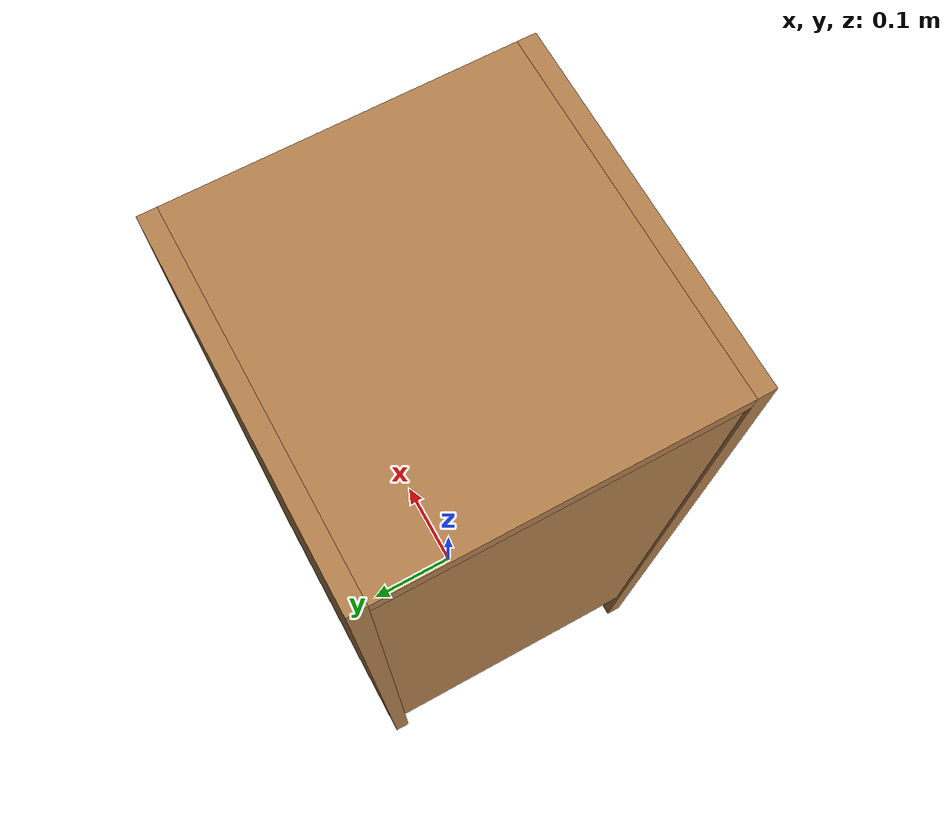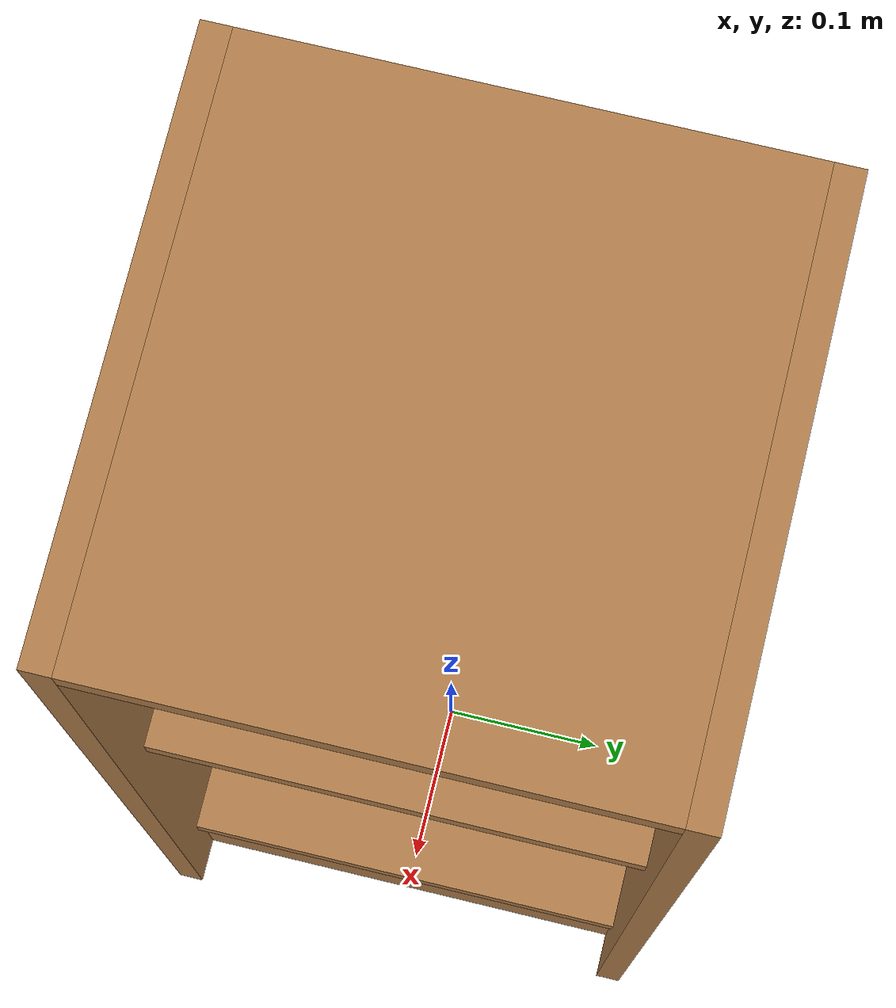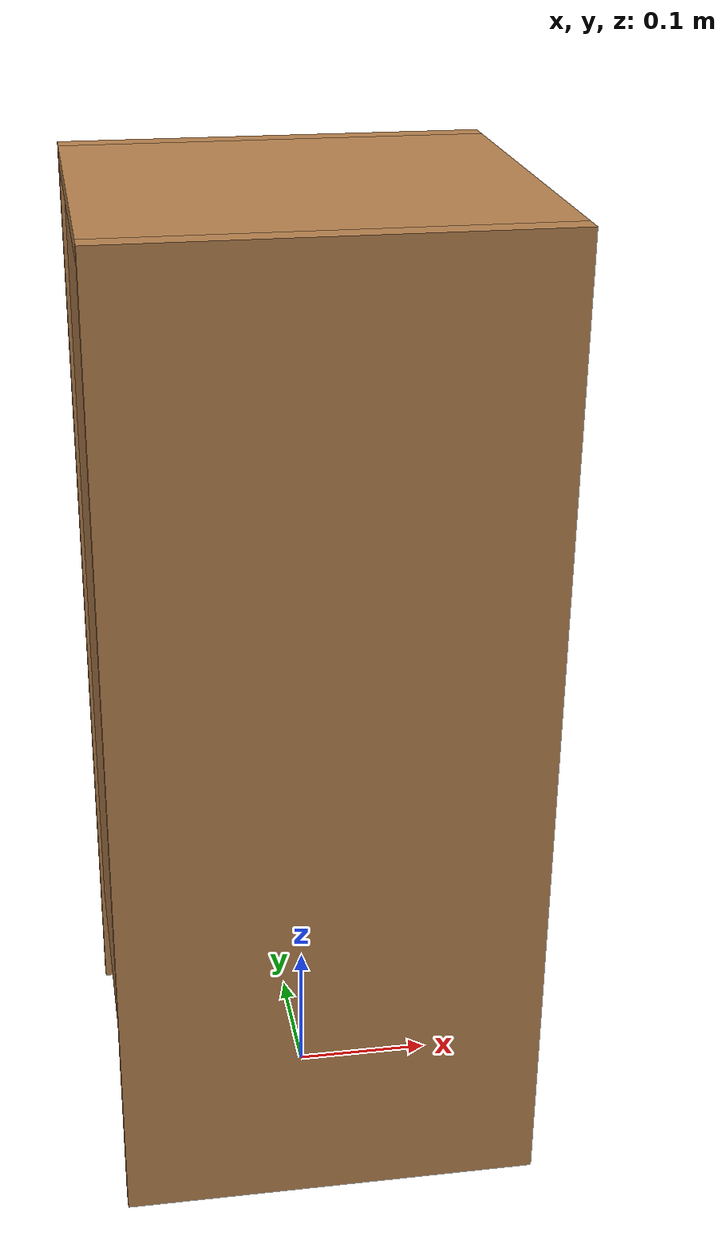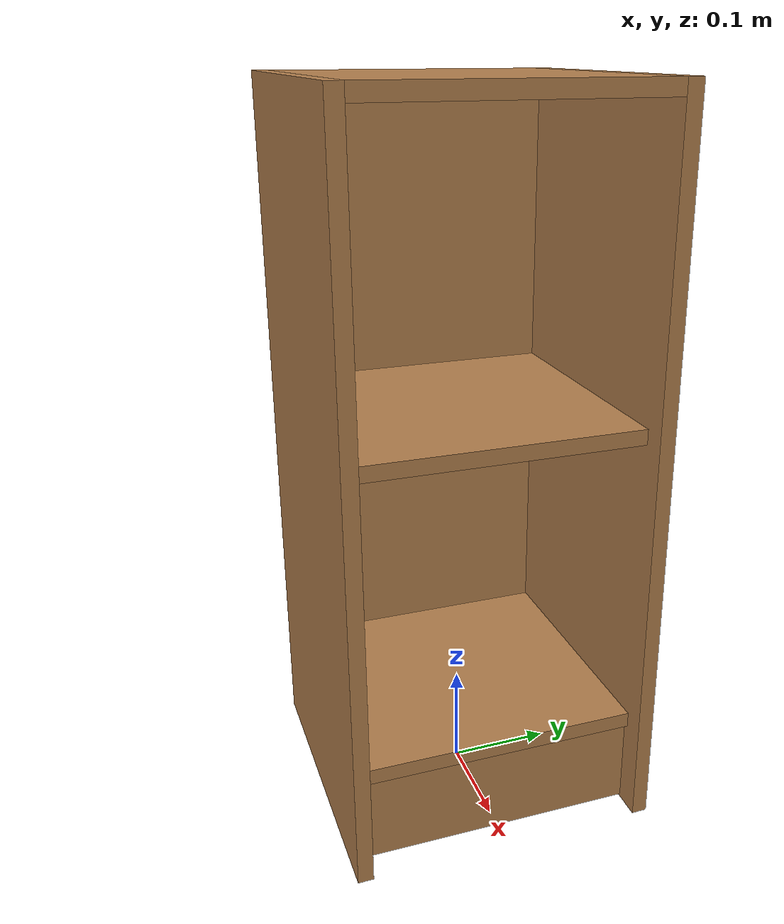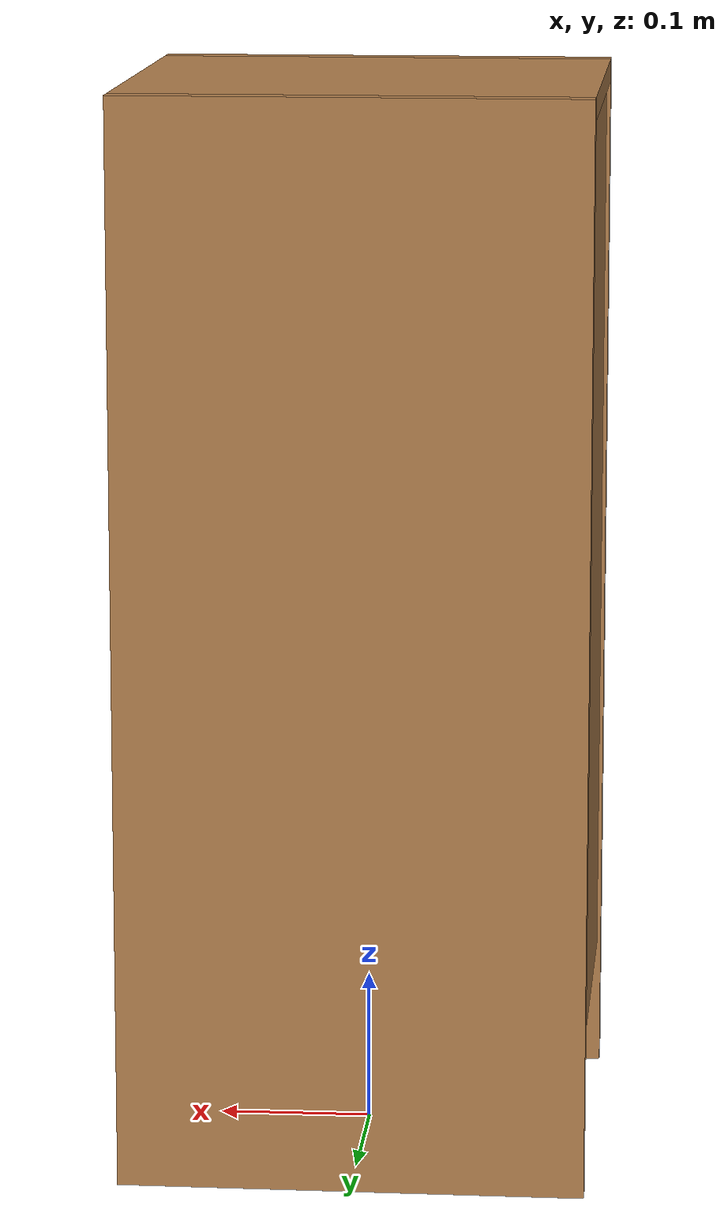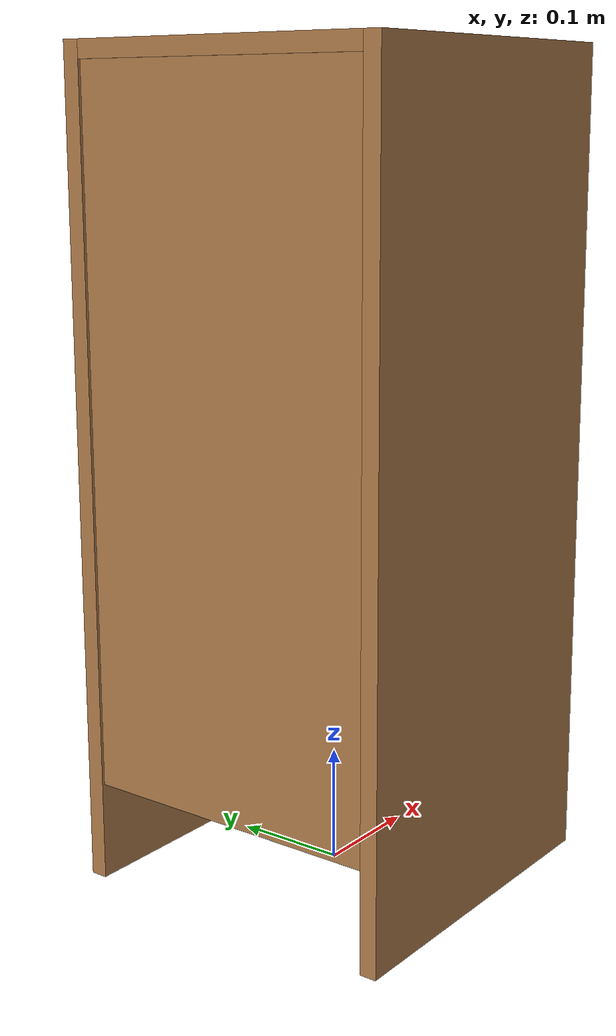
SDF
<?xml version="1.0" ?>
<sdf version="1.5">
  <model name="cabinet_no_door_narrow">
    <link name="cabinet">
      <pose>0 0 0.35 0 0 0</pose>
      <inertial>
        <mass>16.0</mass>
        <pose>0 0 0 0 0 0</pose>
        <inertia>
          <ixx>1.59</ixx>
          <ixy>0</ixy>
          <ixz>0</ixz>
          <iyy>1.12</iyy>
          <iyz>0</iyz>
          <izz>0.91</izz>
        </inertia>
      </inertial>
      <collision name="back">
        <pose>-0.14 0 0.035 0 0 0</pose>
        <geometry>
          <box>
            <size>0.015 0.285 0.6</size>
          </box>
        </geometry>
      </collision>
      <visual name="visual1">
        <pose>-0.14 0 0.035 0 0 0</pose>
        <geometry>
          <box>
            <size>0.015 0.285 0.6</size>
          </box>
        </geometry>
        <material>
          <script>
            <uri>file://media/materials/scripts/gazebo.material</uri>
            <name>Gazebo/Wood</name>
          </script>
        </material>
      </visual>
      <collision name="left_side">
        <pose>0 -0.1425 0 0 0 0</pose>
        <geometry>
          <box>
            <size>0.3 0.015 0.7</size>
          </box>
        </geometry>
      </collision>
      <visual name="visual2">
        <pose>0 -0.1425 0 0 0 0</pose>
        <geometry>
          <box>
            <size>0.3 0.015 0.7</size>
          </box>
        </geometry>
        <material>
          <script>
            <uri>file://media/materials/scripts/gazebo.material</uri>
            <name>Gazebo/Wood</name>
          </script>
        </material>
      </visual>
      <collision name="right_side">
        <pose>0 0.1425 0 0 0 0</pose>
        <geometry>
          <box>
            <size>0.3 0.015 0.7</size>
          </box>
        </geometry>
      </collision>
      <visual name="visual3">
        <pose>0 0.1425 0 0 0 0</pose>
        <geometry>
          <box>
            <size>0.3 0.015 0.7</size>
          </box>
        </geometry>
        <material>
          <script>
            <uri>file://media/materials/scripts/gazebo.material</uri>
            <name>Gazebo/Wood</name>
          </script>
        </material>
      </visual>
      <collision name="bottom">
        <pose>-0.002 0 -0.2525 0 0 0</pose>
        <geometry>
          <box>
            <size>0.26 0.27 0.015</size>
          </box>
        </geometry>
      </collision>
      <visual name="visual4">
        <pose>-0.002 0 -0.2525 0 0 0</pose>
        <geometry>
          <box>
            <size>0.26 0.27 0.015</size>
          </box>
        </geometry>
        <material>
          <script>
            <uri>file://media/materials/scripts/gazebo.material</uri>
            <name>Gazebo/Wood</name>
          </script>
        </material>
      </visual>
      <collision name="top">
        <pose>0 0 0.3425 0 0 0</pose>
        <geometry>
          <box>
            <size>0.3 0.27 0.015</size>
          </box>
        </geometry>
      </collision>
      <visual name="visual5">
        <pose>0 0 0.3425 0 0 0</pose>
        <geometry>
          <box>
            <size>0.3 0.27 0.015</size>
          </box>
        </geometry>
        <material>
          <script>
            <uri>file://media/materials/scripts/gazebo.material</uri>
            <name>Gazebo/Wood</name>
          </script>
        </material>
      </visual>
      <collision name="middle_shelf">
        <pose>-0.002 0 0.0475 0 0 0</pose>
        <geometry>
          <box>
            <size>0.26 0.27 0.015</size>
          </box>
        </geometry>
      </collision>
      <visual name="visual6">
        <pose>-0.002 0 0.0475 0 0 0</pose>
        <geometry>
          <box>
            <size>0.26 0.27 0.015</size>
          </box>
        </geometry>
        <material>
          <script>
            <uri>file://media/materials/scripts/gazebo.material</uri>
            <name>Gazebo/Wood</name>
          </script>
        </material>
      </visual>
      <collision name="low_front">
        <pose>0.115 0 -0.3025 0 0 0</pose>
        <geometry>
          <box>
            <size>0.015 0.27 0.09</size>
          </box>
        </geometry>
      </collision>
      <visual name="visual7">
        <pose>0.115 0 -0.3025 0 0 0</pose>
        <geometry>
          <box>
            <size>0.015 0.27 0.09</size>
          </box>
        </geometry>
        <material>
          <script>
            <uri>file://media/materials/scripts/gazebo.material</uri>
            <name>Gazebo/Wood</name>
          </script>
        </material>
      </visual>
    </link>
  </model>
</sdf>
